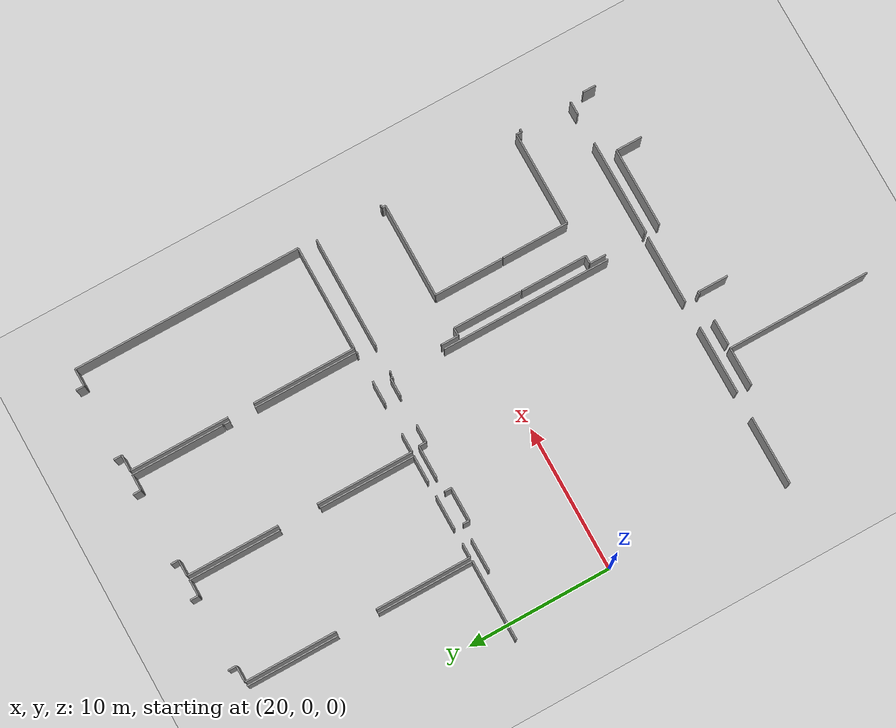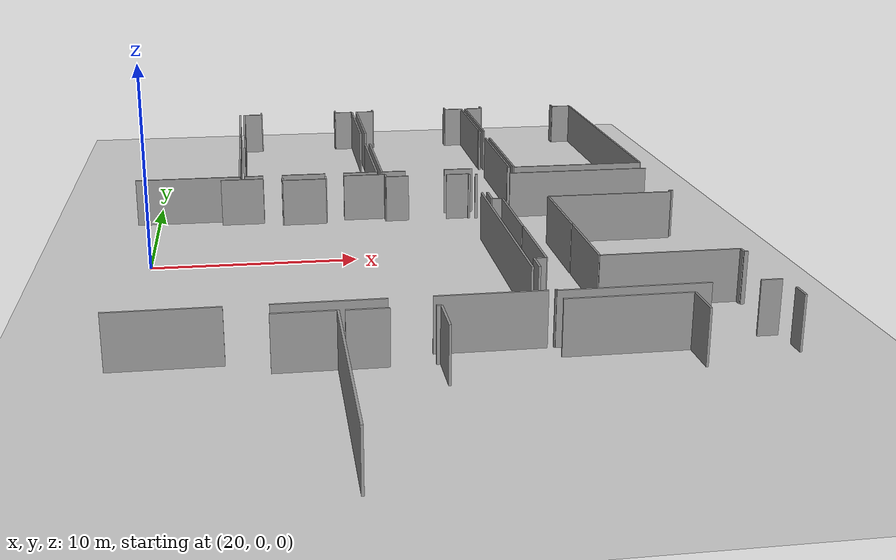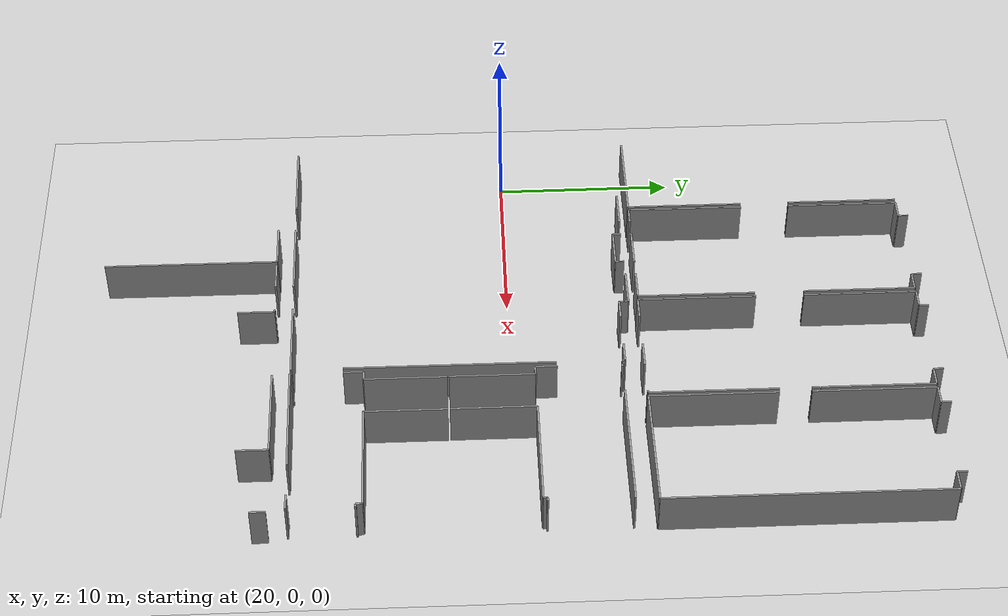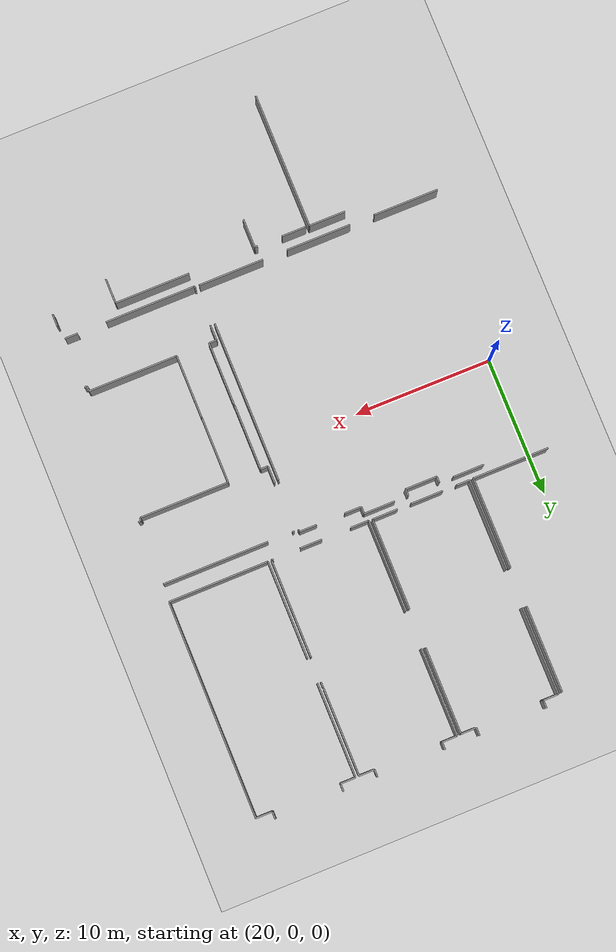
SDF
<sdf version="1.6">
 <world name="default">
  <model name="ground_plane">
   <static>1</static>
   <link name="link">
    <collision name="collision">
     <geometry><plane><normal>0 0 1</normal><size>100 100</size></plane></geometry>
     <surface><friction><ode><mu>100</mu><mu2>50</mu2></ode></friction></surface>
    </collision>
    <visual name="visual">
     <cast_shadows>0</cast_shadows>
     <geometry><plane><normal>0 0 1</normal><size>100 100</size></plane></geometry>
     <material>
      <script><uri>file://media/materials/scripts/gazebo.material</uri><name>Gazebo/Grey</name></script>
     </material>
    </visual>
   </link>
  </model>
  <model name="50045229">
   <static>1</static>
   <link name="Wall_15">
    <collision name="Wall_15_Collision">
     <geometry><box><size>0.431913084314 0.1 2.5</size></box></geometry>
     <pose>0.215956542157 0 1.25 0 0 0</pose>
    </collision>
    <visual name="Wall_15_Visual">
     <pose>0.215956542157 0 1.25 0 0 0</pose>
     <geometry><box><size>0.431913084314 0.1 2.5</size></box></geometry>
     <material>
      <script><uri>file://media/materials/scripts/gazebo.material</uri><name>Gazebo/Grey</name></script>
      <ambient>1 1 1 1</ambient>
     </material>
    </visual>
    <pose>86.2049270837 -6.99475815152 0 0 0 -1.57079632679</pose>
   </link>
   <link name="Wall_16">
    <collision name="Wall_16_Collision">
     <geometry><box><size>7.16381728414 0.1 2.5</size></box></geometry>
     <pose>3.58190864207 0 1.25 0 0 0</pose>
    </collision>
    <visual name="Wall_16_Visual">
     <pose>3.58190864207 0 1.25 0 0 0</pose>
     <geometry><box><size>7.16381728414 0.1 2.5</size></box></geometry>
     <material>
      <script><uri>file://media/materials/scripts/gazebo.material</uri><name>Gazebo/Grey</name></script>
      <ambient>1 1 1 1</ambient>
     </material>
    </visual>
    <pose>86.2049270837 -9.20737666426 0 0 0 -1.57079632679</pose>
   </link>
   <link name="Wall_17">
    <collision name="Wall_17_Collision">
     <geometry><box><size>0.134282704438 0.1 2.5</size></box></geometry>
     <pose>0.0671413522192 0 1.25 0 0 0</pose>
    </collision>
    <visual name="Wall_17_Visual">
     <pose>0.0671413522192 0 1.25 0 0 0</pose>
     <geometry><box><size>0.134282704438 0.1 2.5</size></box></geometry>
     <material>
      <script><uri>file://media/materials/scripts/gazebo.material</uri><name>Gazebo/Grey</name></script>
      <ambient>1 1 1 1</ambient>
     </material>
    </visual>
    <pose>86.2049270837 -16.3711939484 0 0 0 3.14159265359</pose>
   </link>
   <link name="Wall_18">
    <collision name="Wall_18_Collision">
     <geometry><box><size>1.5865158842 0.1 2.5</size></box></geometry>
     <pose>0.793257942099 0 1.25 0 0 0</pose>
    </collision>
    <visual name="Wall_18_Visual">
     <pose>0.793257942099 0 1.25 0 0 0</pose>
     <geometry><box><size>1.5865158842 0.1 2.5</size></box></geometry>
     <material>
      <script><uri>file://media/materials/scripts/gazebo.material</uri><name>Gazebo/Grey</name></script>
      <ambient>1 1 1 1</ambient>
     </material>
    </visual>
    <pose>84.0872456815 -16.3711939484 0 0 0 3.14159265359</pose>
   </link>
   <link name="Wall_19">
    <collision name="Wall_19_Collision">
     <geometry><box><size>1.31998121565 0.1 2.5</size></box></geometry>
     <pose>0.659990607826 0 1.25 0 0 0</pose>
    </collision>
    <visual name="Wall_19_Visual">
     <pose>0.659990607826 0 1.25 0 0 0</pose>
     <geometry><box><size>1.31998121565 0.1 2.5</size></box></geometry>
     <material>
      <script><uri>file://media/materials/scripts/gazebo.material</uri><name>Gazebo/Grey</name></script>
      <ambient>1 1 1 1</ambient>
     </material>
    </visual>
    <pose>80.3557603219 -16.3711939484 0 0 0 3.14159265359</pose>
   </link>
   <link name="Wall_20">
    <collision name="Wall_20_Collision">
     <geometry><box><size>6.68925865286 0.1 2.5</size></box></geometry>
     <pose>3.34462932643 0 1.25 0 0 0</pose>
    </collision>
    <visual name="Wall_20_Visual">
     <pose>3.34462932643 0 1.25 0 0 0</pose>
     <geometry><box><size>6.68925865286 0.1 2.5</size></box></geometry>
     <material>
      <script><uri>file://media/materials/scripts/gazebo.material</uri><name>Gazebo/Grey</name></script>
      <ambient>1 1 1 1</ambient>
     </material>
    </visual>
    <pose>79.0357791062 -16.3711939484 0 0 0 1.57079632679</pose>
   </link>
   <link name="Wall_81">
    <collision name="Wall_81_Collision">
     <geometry><box><size>6.31344477021 0.1 2.5</size></box></geometry>
     <pose>3.1567223851 0 1.25 0 0 0</pose>
    </collision>
    <visual name="Wall_81_Visual">
     <pose>3.1567223851 0 1.25 0 0 0</pose>
     <geometry><box><size>6.31344477021 0.1 2.5</size></box></geometry>
     <material>
      <script><uri>file://media/materials/scripts/gazebo.material</uri><name>Gazebo/Grey</name></script>
      <ambient>1 1 1 1</ambient>
     </material>
    </visual>
    <pose>71.3103351991 -0.602241429641 0 0 0 -1.57079632679</pose>
   </link>
   <link name="Wall_82">
    <collision name="Wall_82_Collision">
     <geometry><box><size>6.33984439452 0.1 2.5</size></box></geometry>
     <pose>3.16992219726 0 1.25 0 0 0</pose>
    </collision>
    <visual name="Wall_82_Visual">
     <pose>3.16992219726 0 1.25 0 0 0</pose>
     <geometry><box><size>6.33984439452 0.1 2.5</size></box></geometry>
     <material>
      <script><uri>file://media/materials/scripts/gazebo.material</uri><name>Gazebo/Grey</name></script>
      <ambient>1 1 1 1</ambient>
     </material>
    </visual>
    <pose>71.591592735 -6.93599360317 0 0 0 1.57079632679</pose>
   </link>
   <link name="Wall_83">
    <collision name="Wall_83_Collision">
     <geometry><box><size>1.11513028468 0.1 2.5</size></box></geometry>
     <pose>0.557565142342 0 1.25 0 0 0</pose>
    </collision>
    <visual name="Wall_83_Visual">
     <pose>0.557565142342 0 1.25 0 0 0</pose>
     <geometry><box><size>1.11513028468 0.1 2.5</size></box></geometry>
     <material>
      <script><uri>file://media/materials/scripts/gazebo.material</uri><name>Gazebo/Grey</name></script>
      <ambient>1 1 1 1</ambient>
     </material>
    </visual>
    <pose>71.591592735 -0.596149208646 0 0 0 0.0</pose>
   </link>
   <link name="Wall_84">
    <collision name="Wall_84_Collision">
     <geometry><box><size>0.570638033228 0.1 2.5</size></box></geometry>
     <pose>0.285319016614 0 1.25 0 0 0</pose>
    </collision>
    <visual name="Wall_84_Visual">
     <pose>0.285319016614 0 1.25 0 0 0</pose>
     <geometry><box><size>0.570638033228 0.1 2.5</size></box></geometry>
     <material>
      <script><uri>file://media/materials/scripts/gazebo.material</uri><name>Gazebo/Grey</name></script>
      <ambient>1 1 1 1</ambient>
     </material>
    </visual>
    <pose>72.7067230197 -0.596149208646 0 0 0 1.57079632679</pose>
   </link>
   <link name="Wall_85">
    <collision name="Wall_85_Collision">
     <geometry><box><size>0.57609564787 0.1 2.5</size></box></geometry>
     <pose>0.288047823935 0 1.25 0 0 0</pose>
    </collision>
    <visual name="Wall_85_Visual">
     <pose>0.288047823935 0 1.25 0 0 0</pose>
     <geometry><box><size>0.57609564787 0.1 2.5</size></box></geometry>
     <material>
      <script><uri>file://media/materials/scripts/gazebo.material</uri><name>Gazebo/Grey</name></script>
      <ambient>1 1 1 1</ambient>
     </material>
    </visual>
    <pose>77.6178146696 -0.0255111754179 0 0 0 -1.57079632679</pose>
   </link>
   <link name="Wall_86">
    <collision name="Wall_86_Collision">
     <geometry><box><size>1.12477630126 0.1 2.5</size></box></geometry>
     <pose>0.56238815063 0 1.25 0 0 0</pose>
    </collision>
    <visual name="Wall_86_Visual">
     <pose>0.56238815063 0 1.25 0 0 0</pose>
     <geometry><box><size>1.12477630126 0.1 2.5</size></box></geometry>
     <material>
      <script><uri>file://media/materials/scripts/gazebo.material</uri><name>Gazebo/Grey</name></script>
      <ambient>1 1 1 1</ambient>
     </material>
    </visual>
    <pose>77.6178146696 -0.601606823288 0 0 0 0.0</pose>
   </link>
   <link name="Wall_87">
    <collision name="Wall_87_Collision">
     <geometry><box><size>6.31814085723 0.1 2.5</size></box></geometry>
     <pose>3.15907042861 0 1.25 0 0 0</pose>
    </collision>
    <visual name="Wall_87_Visual">
     <pose>3.15907042861 0 1.25 0 0 0</pose>
     <geometry><box><size>6.31814085723 0.1 2.5</size></box></geometry>
     <material>
      <script><uri>file://media/materials/scripts/gazebo.material</uri><name>Gazebo/Grey</name></script>
      <ambient>1 1 1 1</ambient>
     </material>
    </visual>
    <pose>78.7425909708 -0.601606823288 0 0 0 -1.57079632679</pose>
   </link>
   <link name="Wall_88">
    <collision name="Wall_88_Collision">
     <geometry><box><size>6.37068626331 0.1 2.5</size></box></geometry>
     <pose>3.18534313166 0 1.25 0 0 0</pose>
    </collision>
    <visual name="Wall_88_Visual">
     <pose>3.18534313166 0 1.25 0 0 0</pose>
     <geometry><box><size>6.37068626331 0.1 2.5</size></box></geometry>
     <material>
      <script><uri>file://media/materials/scripts/gazebo.material</uri><name>Gazebo/Grey</name></script>
      <ambient>1 1 1 1</ambient>
     </material>
    </visual>
    <pose>79.0359060275 -6.94678191118 0 0 0 1.57079632679</pose>
   </link>
   <link name="Wall_89">
    <collision name="Wall_89_Collision">
     <geometry><box><size>1.10840345734 0.1 2.5</size></box></geometry>
     <pose>0.554201728668 0 1.25 0 0 0</pose>
    </collision>
    <visual name="Wall_89_Visual">
     <pose>0.554201728668 0 1.25 0 0 0</pose>
     <geometry><box><size>1.10840345734 0.1 2.5</size></box></geometry>
     <material>
      <script><uri>file://media/materials/scripts/gazebo.material</uri><name>Gazebo/Grey</name></script>
      <ambient>1 1 1 1</ambient>
     </material>
    </visual>
    <pose>79.0359060275 -0.57609564787 0 0 0 0.0</pose>
   </link>
   <link name="Wall_90">
    <collision name="Wall_90_Collision">
     <geometry><box><size>0.542715353666 0.1 2.5</size></box></geometry>
     <pose>0.271357676833 0 1.25 0 0 0</pose>
    </collision>
    <visual name="Wall_90_Visual">
     <pose>0.271357676833 0 1.25 0 0 0</pose>
     <geometry><box><size>0.542715353666 0.1 2.5</size></box></geometry>
     <material>
      <script><uri>file://media/materials/scripts/gazebo.material</uri><name>Gazebo/Grey</name></script>
      <ambient>1 1 1 1</ambient>
     </material>
    </visual>
    <pose>80.1443094848 -0.57609564787 0 0 0 1.57079632679</pose>
   </link>
   <link name="Wall_91">
    <collision name="Wall_91_Collision">
     <geometry><box><size>0.555280559469 0.1 2.5</size></box></geometry>
     <pose>0.277640279734 0 1.25 0 0 0</pose>
    </collision>
    <visual name="Wall_91_Visual">
     <pose>0.277640279734 0 1.25 0 0 0</pose>
     <geometry><box><size>0.555280559469 0.1 2.5</size></box></geometry>
     <material>
      <script><uri>file://media/materials/scripts/gazebo.material</uri><name>Gazebo/Grey</name></script>
      <ambient>1 1 1 1</ambient>
     </material>
    </visual>
    <pose>85.0726624275 -0.0333802942035 0 0 0 -1.57079632679</pose>
   </link>
   <link name="Wall_92">
    <collision name="Wall_92_Collision">
     <geometry><box><size>1.12325324601 0.1 2.5</size></box></geometry>
     <pose>0.561626623006 0 1.25 0 0 0</pose>
    </collision>
    <visual name="Wall_92_Visual">
     <pose>0.561626623006 0 1.25 0 0 0</pose>
     <geometry><box><size>1.12325324601 0.1 2.5</size></box></geometry>
     <material>
      <script><uri>file://media/materials/scripts/gazebo.material</uri><name>Gazebo/Grey</name></script>
      <ambient>1 1 1 1</ambient>
     </material>
    </visual>
    <pose>85.0726624275 -0.588660853672 0 0 0 0.0</pose>
   </link>
   <link name="Wall_93">
    <collision name="Wall_93_Collision">
     <geometry><box><size>6.34149437104 0.1 2.5</size></box></geometry>
     <pose>3.17074718552 0 1.25 0 0 0</pose>
    </collision>
    <visual name="Wall_93_Visual">
     <pose>3.17074718552 0 1.25 0 0 0</pose>
     <geometry><box><size>6.34149437104 0.1 2.5</size></box></geometry>
     <material>
      <script><uri>file://media/materials/scripts/gazebo.material</uri><name>Gazebo/Grey</name></script>
      <ambient>1 1 1 1</ambient>
     </material>
    </visual>
    <pose>86.1959156735 -0.588660853672 0 0 0 -1.57079632679</pose>
   </link>
   <link name="Wall_94">
    <collision name="Wall_94_Collision">
     <geometry><box><size>7.13297541535 0.1 2.5</size></box></geometry>
     <pose>3.56648770767 0 1.25 0 0 0</pose>
    </collision>
    <visual name="Wall_94_Visual">
     <pose>3.56648770767 0 1.25 0 0 0</pose>
     <geometry><box><size>7.13297541535 0.1 2.5</size></box></geometry>
     <material>
      <script><uri>file://media/materials/scripts/gazebo.material</uri><name>Gazebo/Grey</name></script>
      <ambient>1 1 1 1</ambient>
     </material>
    </visual>
    <pose>86.461942657 -16.3624363807 0 0 0 1.57079632679</pose>
   </link>
   <link name="Wall_95">
    <collision name="Wall_95_Collision">
     <geometry><box><size>6.86491769156 0.1 2.5</size></box></geometry>
     <pose>3.43245884578 0 1.25 0 0 0</pose>
    </collision>
    <visual name="Wall_95_Visual">
     <pose>3.43245884578 0 1.25 0 0 0</pose>
     <geometry><box><size>6.86491769156 0.1 2.5</size></box></geometry>
     <material>
      <script><uri>file://media/materials/scripts/gazebo.material</uri><name>Gazebo/Grey</name></script>
      <ambient>1 1 1 1</ambient>
     </material>
    </visual>
    <pose>86.461942657 -7.44279023722 0 0 0 1.57079632679</pose>
   </link>
   <link name="Wall_96">
    <collision name="Wall_96_Collision">
     <geometry><box><size>1.10294584269 0.1 2.5</size></box></geometry>
     <pose>0.551472921347 0 1.25 0 0 0</pose>
    </collision>
    <visual name="Wall_96_Visual">
     <pose>0.551472921347 0 1.25 0 0 0</pose>
     <geometry><box><size>1.10294584269 0.1 2.5</size></box></geometry>
     <material>
      <script><uri>file://media/materials/scripts/gazebo.material</uri><name>Gazebo/Grey</name></script>
      <ambient>1 1 1 1</ambient>
     </material>
    </visual>
    <pose>86.461942657 -0.57787254566 0 0 0 0.0</pose>
   </link>
   <link name="Wall_97">
    <collision name="Wall_97_Collision">
     <geometry><box><size>0.560103567757 0.1 2.5</size></box></geometry>
     <pose>0.280051783878 0 1.25 0 0 0</pose>
    </collision>
    <visual name="Wall_97_Visual">
     <pose>0.280051783878 0 1.25 0 0 0</pose>
     <geometry><box><size>0.560103567757 0.1 2.5</size></box></geometry>
     <material>
      <script><uri>file://media/materials/scripts/gazebo.material</uri><name>Gazebo/Grey</name></script>
      <ambient>1 1 1 1</ambient>
     </material>
    </visual>
    <pose>87.5648884997 -0.57787254566 0 0 0 1.57079632679</pose>
   </link>
   <link name="Wall_98">
    <collision name="Wall_98_Collision">
     <geometry><box><size>0.566195788752 0.1 2.5</size></box></geometry>
     <pose>0.283097894376 0 1.25 0 0 0</pose>
    </collision>
    <visual name="Wall_98_Visual">
     <pose>0.283097894376 0 1.25 0 0 0</pose>
     <geometry><box><size>0.566195788752 0.1 2.5</size></box></geometry>
     <material>
      <script><uri>file://media/materials/scripts/gazebo.material</uri><name>Gazebo/Grey</name></script>
      <ambient>1 1 1 1</ambient>
     </material>
    </visual>
    <pose>92.5294140045 -0.017768977903 0 0 0 -1.57079632679</pose>
   </link>
   <link name="Wall_99">
    <collision name="Wall_99_Collision">
     <geometry><box><size>1.19965985099 0.1 2.5</size></box></geometry>
     <pose>0.599829925497 0 1.25 0 0 0</pose>
    </collision>
    <visual name="Wall_99_Visual">
     <pose>0.599829925497 0 1.25 0 0 0</pose>
     <geometry><box><size>1.19965985099 0.1 2.5</size></box></geometry>
     <material>
      <script><uri>file://media/materials/scripts/gazebo.material</uri><name>Gazebo/Grey</name></script>
      <ambient>1 1 1 1</ambient>
     </material>
    </visual>
    <pose>92.5294140045 -0.583964766655 0 0 0 0.0</pose>
   </link>
   <link name="Wall_100">
    <collision name="Wall_100_Collision">
     <geometry><box><size>15.7641295105 0.1 2.5</size></box></geometry>
     <pose>7.88206475523 0 1.25 0 0 0</pose>
    </collision>
    <visual name="Wall_100_Visual">
     <pose>7.88206475523 0 1.25 0 0 0</pose>
     <geometry><box><size>15.7641295105 0.1 2.5</size></box></geometry>
     <material>
      <script><uri>file://media/materials/scripts/gazebo.material</uri><name>Gazebo/Grey</name></script>
      <ambient>1 1 1 1</ambient>
     </material>
    </visual>
    <pose>93.7290738555 -0.583964766655 0 0 0 -1.57079632679</pose>
   </link>
   <link name="Wall_101">
    <collision name="Wall_101_Collision">
     <geometry><box><size>7.26714535099 0.1 2.5</size></box></geometry>
     <pose>3.63357267549 0 1.25 0 0 0</pose>
    </collision>
    <visual name="Wall_101_Visual">
     <pose>3.63357267549 0 1.25 0 0 0</pose>
     <geometry><box><size>7.26714535099 0.1 2.5</size></box></geometry>
     <material>
      <script><uri>file://media/materials/scripts/gazebo.material</uri><name>Gazebo/Grey</name></script>
      <ambient>1 1 1 1</ambient>
     </material>
    </visual>
    <pose>93.7290738555 -16.3480942771 0 0 0 -3.13961909833</pose>
   </link>
   <link name="Wall_102">
    <collision name="Wall_102_Collision">
     <geometry><box><size>6.60904440975 0.1 2.5</size></box></geometry>
     <pose>3.30452220488 0 1.25 0 0 0</pose>
    </collision>
    <visual name="Wall_102_Visual">
     <pose>3.30452220488 0 1.25 0 0 0</pose>
     <geometry><box><size>6.60904440975 0.1 2.5</size></box></geometry>
     <material>
      <script><uri>file://media/materials/scripts/gazebo.material</uri><name>Gazebo/Grey</name></script>
      <ambient>1 1 1 1</ambient>
     </material>
    </visual>
    <pose>71.5791544505 -16.3390828669 0 0 0 1.57079632679</pose>
   </link>
   <link name="Wall_103">
    <collision name="Wall_103_Collision">
     <geometry><box><size>6.61107515008 0.1 2.5</size></box></geometry>
     <pose>3.30553757504 0 1.25 0 0 0</pose>
    </collision>
    <visual name="Wall_103_Visual">
     <pose>3.30553757504 0 1.25 0 0 0</pose>
     <geometry><box><size>6.61107515008 0.1 2.5</size></box></geometry>
     <material>
      <script><uri>file://media/materials/scripts/gazebo.material</uri><name>Gazebo/Grey</name></script>
      <ambient>1 1 1 1</ambient>
     </material>
    </visual>
    <pose>78.7601061062 -9.73003845715 0 0 0 -1.57079632679</pose>
   </link>
   <link name="Wall_104">
    <collision name="Wall_104_Collision">
     <geometry><box><size>1.82753937732 0.1 2.5</size></box></geometry>
     <pose>0.913769688662 0 1.25 0 0 0</pose>
    </collision>
    <visual name="Wall_104_Visual">
     <pose>0.913769688662 0 1.25 0 0 0</pose>
     <geometry><box><size>1.82753937732 0.1 2.5</size></box></geometry>
     <material>
      <script><uri>file://media/materials/scripts/gazebo.material</uri><name>Gazebo/Grey</name></script>
      <ambient>1 1 1 1</ambient>
     </material>
    </visual>
    <pose>78.7601061062 -16.3411136072 0 0 0 3.14159265359</pose>
   </link>
   <link name="Wall_105">
    <collision name="Wall_105_Collision">
     <geometry><box><size>2.34512431938 0.1 2.5</size></box></geometry>
     <pose>1.17256215969 0 1.25 0 0 0</pose>
    </collision>
    <visual name="Wall_105_Visual">
     <pose>1.17256215969 0 1.25 0 0 0</pose>
     <geometry><box><size>2.34512431938 0.1 2.5</size></box></geometry>
     <material>
      <script><uri>file://media/materials/scripts/gazebo.material</uri><name>Gazebo/Grey</name></script>
      <ambient>1 1 1 1</ambient>
     </material>
    </visual>
    <pose>75.9227810989 -16.3411136072 0 0 0 3.14159265359</pose>
   </link>
   <link name="Wall_106">
    <collision name="Wall_106_Collision">
     <geometry><box><size>0.988845705517 0.1 2.5</size></box></geometry>
     <pose>0.494422852758 0 1.25 0 0 0</pose>
    </collision>
    <visual name="Wall_106_Visual">
     <pose>0.494422852758 0 1.25 0 0 0</pose>
     <geometry><box><size>0.988845705517 0.1 2.5</size></box></geometry>
     <material>
      <script><uri>file://media/materials/scripts/gazebo.material</uri><name>Gazebo/Grey</name></script>
      <ambient>1 1 1 1</ambient>
     </material>
    </visual>
    <pose>72.5679980708 -16.3411136072 0 0 0 3.13953900483</pose>
   </link>
   <link name="Wall_108">
    <collision name="Wall_108_Collision">
     <geometry><box><size>6.62414804097 0.1 2.5</size></box></geometry>
     <pose>3.31207402049 0 1.25 0 0 0</pose>
    </collision>
    <visual name="Wall_108_Visual">
     <pose>3.31207402049 0 1.25 0 0 0</pose>
     <geometry><box><size>6.62414804097 0.1 2.5</size></box></geometry>
     <material>
      <script><uri>file://media/materials/scripts/gazebo.material</uri><name>Gazebo/Grey</name></script>
      <ambient>1 1 1 1</ambient>
     </material>
    </visual>
    <pose>71.3161735775 -9.73003845715 0 0 0 -1.57079632679</pose>
   </link>
   <link name="Wall_109">
    <collision name="Wall_109_Collision">
     <geometry><box><size>5.53097513612 0.1 2.5</size></box></geometry>
     <pose>2.76548756806 0 1.25 0 0 0</pose>
    </collision>
    <visual name="Wall_109_Visual">
     <pose>2.76548756806 0 1.25 0 0 0</pose>
     <geometry><box><size>5.53097513612 0.1 2.5</size></box></geometry>
     <material>
      <script><uri>file://media/materials/scripts/gazebo.material</uri><name>Gazebo/Grey</name></script>
      <ambient>1 1 1 1</ambient>
     </material>
    </visual>
    <pose>71.3161735775 -16.3541864981 0 0 0 3.14159265359</pose>
   </link>
   <link name="Wall_305">
    <collision name="Wall_305_Collision">
     <geometry><box><size>2.65988907081 0.1 2.5</size></box></geometry>
     <pose>1.3299445354 0 1.25 0 0 0</pose>
    </collision>
    <visual name="Wall_305_Visual">
     <pose>1.3299445354 0 1.25 0 0 0</pose>
     <geometry><box><size>2.65988907081 0.1 2.5</size></box></geometry>
     <material>
      <script><uri>file://media/materials/scripts/gazebo.material</uri><name>Gazebo/Grey</name></script>
      <ambient>1 1 1 1</ambient>
     </material>
    </visual>
    <pose>72.4518651081 -36.799045552 0 0 0 0.0</pose>
   </link>
   <link name="Wall_306">
    <collision name="Wall_306_Collision">
     <geometry><box><size>9.84122149031 0.1 2.5</size></box></geometry>
     <pose>4.92061074515 0 1.25 0 0 0</pose>
    </collision>
    <visual name="Wall_306_Visual">
     <pose>4.92061074515 0 1.25 0 0 0</pose>
     <geometry><box><size>9.84122149031 0.1 2.5</size></box></geometry>
     <material>
      <script><uri>file://media/materials/scripts/gazebo.material</uri><name>Gazebo/Grey</name></script>
      <ambient>1 1 1 1</ambient>
     </material>
    </visual>
    <pose>75.1117541789 -36.799045552 0 0 0 -1.57079632679</pose>
   </link>
   <link name="Wall_320">
    <collision name="Wall_320_Collision">
     <geometry><box><size>1.75532117428 0.1 2.5</size></box></geometry>
     <pose>0.877660587138 0 1.25 0 0 0</pose>
    </collision>
    <visual name="Wall_320_Visual">
     <pose>0.877660587138 0 1.25 0 0 0</pose>
     <geometry><box><size>1.75532117428 0.1 2.5</size></box></geometry>
     <material>
      <script><uri>file://media/materials/scripts/gazebo.material</uri><name>Gazebo/Grey</name></script>
      <ambient>1 1 1 1</ambient>
     </material>
    </visual>
    <pose>75.380446509 -36.8225259871 0 0 0 0.0</pose>
   </link>
   <link name="Wall_321">
    <collision name="Wall_321_Collision">
     <geometry><box><size>0.204343245885 0.1 2.5</size></box></geometry>
     <pose>0.102171622942 0 1.25 0 0 0</pose>
    </collision>
    <visual name="Wall_321_Visual">
     <pose>0.102171622942 0 1.25 0 0 0</pose>
     <geometry><box><size>0.204343245885 0.1 2.5</size></box></geometry>
     <material>
      <script><uri>file://media/materials/scripts/gazebo.material</uri><name>Gazebo/Grey</name></script>
      <ambient>1 1 1 1</ambient>
     </material>
    </visual>
    <pose>78.9596263438 -36.8225259871 0 0 0 0.0</pose>
   </link>
   <link name="Wall_322">
    <collision name="Wall_322_Collision">
     <geometry><box><size>2.08442802929 0.1 2.5</size></box></geometry>
     <pose>1.04221401465 0 1.25 0 0 0</pose>
    </collision>
    <visual name="Wall_322_Visual">
     <pose>1.04221401465 0 1.25 0 0 0</pose>
     <geometry><box><size>2.08442802929 0.1 2.5</size></box></geometry>
     <material>
      <script><uri>file://media/materials/scripts/gazebo.material</uri><name>Gazebo/Grey</name></script>
      <ambient>1 1 1 1</ambient>
     </material>
    </visual>
    <pose>79.1639695897 -36.8225259871 0 0 0 -1.57079632679</pose>
   </link>
   <link name="Wall_336">
    <collision name="Wall_336_Collision">
     <geometry><box><size>0.895683407582 0.1 2.5</size></box></geometry>
     <pose>0.447841703791 0 1.25 0 0 0</pose>
    </collision>
    <visual name="Wall_336_Visual">
     <pose>0.447841703791 0 1.25 0 0 0</pose>
     <geometry><box><size>0.895683407582 0.1 2.5</size></box></geometry>
     <material>
      <script><uri>file://media/materials/scripts/gazebo.material</uri><name>Gazebo/Grey</name></script>
      <ambient>1 1 1 1</ambient>
     </material>
    </visual>
    <pose>93.7967228928 -36.8320450824 0 0 0 -1.57079632679</pose>
   </link>
   <link name="Wall_347">
    <collision name="Wall_347_Collision">
     <geometry><box><size>5.44111487644 0.1 2.5</size></box></geometry>
     <pose>2.72055743822 0 1.25 0 0 0</pose>
    </collision>
    <visual name="Wall_347_Visual">
     <pose>2.72055743822 0 1.25 0 0 0</pose>
     <geometry><box><size>5.44111487644 0.1 2.5</size></box></geometry>
     <material>
      <script><uri>file://media/materials/scripts/gazebo.material</uri><name>Gazebo/Grey</name></script>
      <ambient>1 1 1 1</ambient>
     </material>
    </visual>
    <pose>84.0594499232 -36.8203683255 0 0 0 0.0</pose>
   </link>
   <link name="Wall_348">
    <collision name="Wall_348_Collision">
     <geometry><box><size>1.78590920052 0.1 2.5</size></box></geometry>
     <pose>0.892954600261 0 1.25 0 0 0</pose>
    </collision>
    <visual name="Wall_348_Visual">
     <pose>0.892954600261 0 1.25 0 0 0</pose>
     <geometry><box><size>1.78590920052 0.1 2.5</size></box></geometry>
     <material>
      <script><uri>file://media/materials/scripts/gazebo.material</uri><name>Gazebo/Grey</name></script>
      <ambient>1 1 1 1</ambient>
     </material>
    </visual>
    <pose>89.5005647997 -36.8203683255 0 0 0 -1.57079632679</pose>
   </link>
   <link name="Wall_368">
    <collision name="Wall_368_Collision">
     <geometry><box><size>0.126921270736 0.1 2.5</size></box></geometry>
     <pose>0.0634606353679 0 1.25 0 0 0</pose>
    </collision>
    <visual name="Wall_368_Visual">
     <pose>0.0634606353679 0 1.25 0 0 0</pose>
     <geometry><box><size>0.126921270736 0.1 2.5</size></box></geometry>
     <material>
      <script><uri>file://media/materials/scripts/gazebo.material</uri><name>Gazebo/Grey</name></script>
      <ambient>1 1 1 1</ambient>
     </material>
    </visual>
    <pose>84.0237850461 -35.8492936831 0 0 0 1.57079632679</pose>
   </link>
   <link name="Wall_369">
    <collision name="Wall_369_Collision">
     <geometry><box><size>1.11728794629 0.1 2.5</size></box></geometry>
     <pose>0.558643973143 0 1.25 0 0 0</pose>
    </collision>
    <visual name="Wall_369_Visual">
     <pose>0.558643973143 0 1.25 0 0 0</pose>
     <geometry><box><size>1.11728794629 0.1 2.5</size></box></geometry>
     <material>
      <script><uri>file://media/materials/scripts/gazebo.material</uri><name>Gazebo/Grey</name></script>
      <ambient>1 1 1 1</ambient>
     </material>
    </visual>
    <pose>84.0237850461 -32.9301044562 0 0 0 1.57079632679</pose>
   </link>
   <link name="Wall_370">
    <collision name="Wall_370_Collision">
     <geometry><box><size>0.549696023557 0.1 2.5</size></box></geometry>
     <pose>0.274848011778 0 1.25 0 0 0</pose>
    </collision>
    <visual name="Wall_370_Visual">
     <pose>0.274848011778 0 1.25 0 0 0</pose>
     <geometry><box><size>0.549696023557 0.1 2.5</size></box></geometry>
     <material>
      <script><uri>file://media/materials/scripts/gazebo.material</uri><name>Gazebo/Grey</name></script>
      <ambient>1 1 1 1</ambient>
     </material>
    </visual>
    <pose>84.0237850461 -31.8128165099 0 0 0 0.0</pose>
   </link>
   <link name="Wall_371">
    <collision name="Wall_371_Collision">
     <geometry><box><size>4.57094264428 0.1 2.5</size></box></geometry>
     <pose>2.28547132214 0 1.25 0 0 0</pose>
    </collision>
    <visual name="Wall_371_Visual">
     <pose>2.28547132214 0 1.25 0 0 0</pose>
     <geometry><box><size>4.57094264428 0.1 2.5</size></box></geometry>
     <material>
      <script><uri>file://media/materials/scripts/gazebo.material</uri><name>Gazebo/Grey</name></script>
      <ambient>1 1 1 1</ambient>
     </material>
    </visual>
    <pose>84.5734810697 -31.8128165099 0 0 0 1.57079632679</pose>
   </link>
   <link name="Wall_372">
    <collision name="Wall_372_Collision">
     <geometry><box><size>4.58401553516 0.1 2.5</size></box></geometry>
     <pose>2.29200776758 0 1.25 0 0 0</pose>
    </collision>
    <visual name="Wall_372_Visual">
     <pose>2.29200776758 0 1.25 0 0 0</pose>
     <geometry><box><size>4.58401553516 0.1 2.5</size></box></geometry>
     <material>
      <script><uri>file://media/materials/scripts/gazebo.material</uri><name>Gazebo/Grey</name></script>
      <ambient>1 1 1 1</ambient>
     </material>
    </visual>
    <pose>86.9631547551 -27.2418738656 0 0 0 -1.57079632679</pose>
   </link>
   <link name="Wall_373">
    <collision name="Wall_373_Collision">
     <geometry><box><size>6.47818857962 0.1 2.5</size></box></geometry>
     <pose>3.23909428981 0 1.25 0 0 0</pose>
    </collision>
    <visual name="Wall_373_Visual">
     <pose>3.23909428981 0 1.25 0 0 0</pose>
     <geometry><box><size>6.47818857962 0.1 2.5</size></box></geometry>
     <material>
      <script><uri>file://media/materials/scripts/gazebo.material</uri><name>Gazebo/Grey</name></script>
      <ambient>1 1 1 1</ambient>
     </material>
    </visual>
    <pose>86.9631547551 -31.8258894008 0 0 0 0.0</pose>
   </link>
   <link name="Wall_374">
    <collision name="Wall_374_Collision">
     <geometry><box><size>0.368071685134 0.1 2.5</size></box></geometry>
     <pose>0.184035842567 0 1.25 0 0 0</pose>
    </collision>
    <visual name="Wall_374_Visual">
     <pose>0.184035842567 0 1.25 0 0 0</pose>
     <geometry><box><size>0.368071685134 0.1 2.5</size></box></geometry>
     <material>
      <script><uri>file://media/materials/scripts/gazebo.material</uri><name>Gazebo/Grey</name></script>
      <ambient>1 1 1 1</ambient>
     </material>
    </visual>
    <pose>93.4413433347 -31.8258894008 0 0 0 -1.57079632679</pose>
   </link>
   <link name="Wall_375">
    <collision name="Wall_375_Collision">
     <geometry><box><size>0.190381906104 0.1 2.5</size></box></geometry>
     <pose>0.0951909530518 0 1.25 0 0 0</pose>
    </collision>
    <visual name="Wall_375_Visual">
     <pose>0.0951909530518 0 1.25 0 0 0</pose>
     <geometry><box><size>0.190381906104 0.1 2.5</size></box></geometry>
     <material>
      <script><uri>file://media/materials/scripts/gazebo.material</uri><name>Gazebo/Grey</name></script>
      <ambient>1 1 1 1</ambient>
     </material>
    </visual>
    <pose>93.4413433347 -32.1939610859 0 0 0 0.0</pose>
   </link>
   <link name="Wall_376">
    <collision name="Wall_376_Collision">
     <geometry><box><size>0.929571386869 0.1 2.5</size></box></geometry>
     <pose>0.464785693434 0 1.25 0 0 0</pose>
    </collision>
    <visual name="Wall_376_Visual">
     <pose>0.464785693434 0 1.25 0 0 0</pose>
     <geometry><box><size>0.929571386869 0.1 2.5</size></box></geometry>
     <material>
      <script><uri>file://media/materials/scripts/gazebo.material</uri><name>Gazebo/Grey</name></script>
      <ambient>1 1 1 1</ambient>
     </material>
    </visual>
    <pose>93.6317252408 -35.8340631306 0 0 0 3.14159265359</pose>
   </link>
   <link name="Wall_377">
    <collision name="Wall_377_Collision">
     <geometry><box><size>6.57238180984 0.1 2.5</size></box></geometry>
     <pose>3.28619090492 0 1.25 0 0 0</pose>
    </collision>
    <visual name="Wall_377_Visual">
     <pose>3.28619090492 0 1.25 0 0 0</pose>
     <geometry><box><size>6.57238180984 0.1 2.5</size></box></geometry>
     <material>
      <script><uri>file://media/materials/scripts/gazebo.material</uri><name>Gazebo/Grey</name></script>
      <ambient>1 1 1 1</ambient>
     </material>
    </visual>
    <pose>90.5961492086 -35.8340631306 0 0 0 -3.1392752949</pose>
   </link>
   <link name="Wall_378">
    <collision name="Wall_378_Collision">
     <geometry><box><size>0.233535138154 0.1 2.5</size></box></geometry>
     <pose>0.116767569077 0 1.25 0 0 0</pose>
    </collision>
    <visual name="Wall_378_Visual">
     <pose>0.116767569077 0 1.25 0 0 0</pose>
     <geometry><box><size>0.233535138154 0.1 2.5</size></box></geometry>
     <material>
      <script><uri>file://media/materials/scripts/gazebo.material</uri><name>Gazebo/Grey</name></script>
      <ambient>1 1 1 1</ambient>
     </material>
    </visual>
    <pose>93.4388049093 -22.4197540266 0 0 0 1.57079632679</pose>
   </link>
   <link name="Wall_379">
    <collision name="Wall_379_Collision">
     <geometry><box><size>0.204343245885 0.1 2.5</size></box></geometry>
     <pose>0.102171622942 0 1.25 0 0 0</pose>
    </collision>
    <visual name="Wall_379_Visual">
     <pose>0.102171622942 0 1.25 0 0 0</pose>
     <geometry><box><size>0.204343245885 0.1 2.5</size></box></geometry>
     <material>
      <script><uri>file://media/materials/scripts/gazebo.material</uri><name>Gazebo/Grey</name></script>
      <ambient>1 1 1 1</ambient>
     </material>
    </visual>
    <pose>93.4388049093 -22.1862188884 0 0 0 0.0</pose>
   </link>
   <link name="Wall_380">
    <collision name="Wall_380_Collision">
     <geometry><box><size>7.68102146239 0.1 2.5</size></box></geometry>
     <pose>3.84051073119 0 1.25 0 0 0</pose>
    </collision>
    <visual name="Wall_380_Visual">
     <pose>3.84051073119 0 1.25 0 0 0</pose>
     <geometry><box><size>7.68102146239 0.1 2.5</size></box></geometry>
     <material>
      <script><uri>file://media/materials/scripts/gazebo.material</uri><name>Gazebo/Grey</name></script>
      <ambient>1 1 1 1</ambient>
     </material>
    </visual>
    <pose>93.6431481552 -17.6091840232 0 0 0 3.14159265359</pose>
   </link>
   <link name="Wall_381">
    <collision name="Wall_381_Collision">
     <geometry><box><size>0.143421035931 0.1 2.5</size></box></geometry>
     <pose>0.0717105179657 0 1.25 0 0 0</pose>
    </collision>
    <visual name="Wall_381_Visual">
     <pose>0.0717105179657 0 1.25 0 0 0</pose>
     <geometry><box><size>0.143421035931 0.1 2.5</size></box></geometry>
     <material>
      <script><uri>file://media/materials/scripts/gazebo.material</uri><name>Gazebo/Grey</name></script>
      <ambient>1 1 1 1</ambient>
     </material>
    </visual>
    <pose>84.1617484674 -17.6091840232 0 0 0 3.14159265359</pose>
   </link>
   <link name="Wall_382">
    <collision name="Wall_382_Collision">
     <geometry><box><size>1.22504410514 0.1 2.5</size></box></geometry>
     <pose>0.612522052571 0 1.25 0 0 0</pose>
    </collision>
    <visual name="Wall_382_Visual">
     <pose>0.612522052571 0 1.25 0 0 0</pose>
     <geometry><box><size>1.22504410514 0.1 2.5</size></box></geometry>
     <material>
      <script><uri>file://media/materials/scripts/gazebo.material</uri><name>Gazebo/Grey</name></script>
      <ambient>1 1 1 1</ambient>
     </material>
    </visual>
    <pose>84.0183274315 -21.1821447156 0 0 0 -1.57079632679</pose>
   </link>
   <link name="Wall_383">
    <collision name="Wall_383_Collision">
     <geometry><box><size>0.541826904771 0.1 2.5</size></box></geometry>
     <pose>0.270913452385 0 1.25 0 0 0</pose>
    </collision>
    <visual name="Wall_383_Visual">
     <pose>0.270913452385 0 1.25 0 0 0</pose>
     <geometry><box><size>0.541826904771 0.1 2.5</size></box></geometry>
     <material>
      <script><uri>file://media/materials/scripts/gazebo.material</uri><name>Gazebo/Grey</name></script>
      <ambient>1 1 1 1</ambient>
     </material>
    </visual>
    <pose>84.0183274315 -22.4071888208 0 0 0 0.0</pose>
   </link>
   <link name="Wall_384">
    <collision name="Wall_384_Collision">
     <geometry><box><size>4.73403647717 0.1 2.5</size></box></geometry>
     <pose>2.36701823859 0 1.25 0 0 0</pose>
    </collision>
    <visual name="Wall_384_Visual">
     <pose>2.36701823859 0 1.25 0 0 0</pose>
     <geometry><box><size>4.73403647717 0.1 2.5</size></box></geometry>
     <material>
      <script><uri>file://media/materials/scripts/gazebo.material</uri><name>Gazebo/Grey</name></script>
      <ambient>1 1 1 1</ambient>
     </material>
    </visual>
    <pose>84.5601543363 -22.4071888208 0 0 0 -1.57079632679</pose>
   </link>
   <link name="Wall_385">
    <collision name="Wall_385_Collision">
     <geometry><box><size>4.7360672175 0.1 2.5</size></box></geometry>
     <pose>2.36803360875 0 1.25 0 0 0</pose>
    </collision>
    <visual name="Wall_385_Visual">
     <pose>2.36803360875 0 1.25 0 0 0</pose>
     <geometry><box><size>4.7360672175 0.1 2.5</size></box></geometry>
     <material>
      <script><uri>file://media/materials/scripts/gazebo.material</uri><name>Gazebo/Grey</name></script>
      <ambient>1 1 1 1</ambient>
     </material>
    </visual>
    <pose>86.9537625811 -27.1412252979 0 0 0 1.57079632679</pose>
   </link>
   <link name="Wall_386">
    <collision name="Wall_386_Collision">
     <geometry><box><size>6.48505875384 0.1 2.5</size></box></geometry>
     <pose>3.24252937692 0 1.25 0 0 0</pose>
    </collision>
    <visual name="Wall_386_Visual">
     <pose>3.24252937692 0 1.25 0 0 0</pose>
     <geometry><box><size>6.48505875384 0.1 2.5</size></box></geometry>
     <material>
      <script><uri>file://media/materials/scripts/gazebo.material</uri><name>Gazebo/Grey</name></script>
      <ambient>1 1 1 1</ambient>
     </material>
    </visual>
    <pose>86.9537625811 -22.4051580804 0 0 0 -0.00225070566231</pose>
   </link>
   <link name="Wall_422">
    <collision name="Wall_422_Collision">
     <geometry><box><size>2.24231809009 0.1 2.5</size></box></geometry>
     <pose>1.12115904504 0 1.25 0 0 0</pose>
    </collision>
    <visual name="Wall_422_Visual">
     <pose>1.12115904504 0 1.25 0 0 0</pose>
     <geometry><box><size>2.24231809009 0.1 2.5</size></box></geometry>
     <material>
      <script><uri>file://media/materials/scripts/gazebo.material</uri><name>Gazebo/Grey</name></script>
      <ambient>1 1 1 1</ambient>
     </material>
    </visual>
    <pose>70.3016918605 -16.9517318407 0 0 0 0.0</pose>
   </link>
   <link name="Wall_423">
    <collision name="Wall_423_Collision">
     <geometry><box><size>0.45717041719 0.1 2.5</size></box></geometry>
     <pose>0.228585208595 0 1.25 0 0 0</pose>
    </collision>
    <visual name="Wall_423_Visual">
     <pose>0.228585208595 0 1.25 0 0 0</pose>
     <geometry><box><size>0.45717041719 0.1 2.5</size></box></geometry>
     <material>
      <script><uri>file://media/materials/scripts/gazebo.material</uri><name>Gazebo/Grey</name></script>
      <ambient>1 1 1 1</ambient>
     </material>
    </visual>
    <pose>73.5889527726 -16.9517318407 0 0 0 -1.57079632679</pose>
   </link>
   <link name="Wall_424">
    <collision name="Wall_424_Collision">
     <geometry><box><size>2.30044803209 0.1 2.5</size></box></geometry>
     <pose>1.15022401604 0 1.25 0 0 0</pose>
    </collision>
    <visual name="Wall_424_Visual">
     <pose>1.15022401604 0 1.25 0 0 0</pose>
     <geometry><box><size>2.30044803209 0.1 2.5</size></box></geometry>
     <material>
      <script><uri>file://media/materials/scripts/gazebo.material</uri><name>Gazebo/Grey</name></script>
      <ambient>1 1 1 1</ambient>
     </material>
    </visual>
    <pose>73.5889527726 -17.4089022579 0 0 0 0.0</pose>
   </link>
   <link name="Wall_425">
    <collision name="Wall_425_Collision">
     <geometry><box><size>0.491946845372 0.1 2.5</size></box></geometry>
     <pose>0.245973422686 0 1.25 0 0 0</pose>
    </collision>
    <visual name="Wall_425_Visual">
     <pose>0.245973422686 0 1.25 0 0 0</pose>
     <geometry><box><size>0.491946845372 0.1 2.5</size></box></geometry>
     <material>
      <script><uri>file://media/materials/scripts/gazebo.material</uri><name>Gazebo/Grey</name></script>
      <ambient>1 1 1 1</ambient>
     </material>
    </visual>
    <pose>75.8894008047 -17.4089022579 0 0 0 1.57079632679</pose>
   </link>
   <link name="Wall_426">
    <collision name="Wall_426_Collision">
     <geometry><box><size>2.25323331937 0.1 2.5</size></box></geometry>
     <pose>1.12661665969 0 1.25 0 0 0</pose>
    </collision>
    <visual name="Wall_426_Visual">
     <pose>1.12661665969 0 1.25 0 0 0</pose>
     <geometry><box><size>2.25323331937 0.1 2.5</size></box></geometry>
     <material>
      <script><uri>file://media/materials/scripts/gazebo.material</uri><name>Gazebo/Grey</name></script>
      <ambient>1 1 1 1</ambient>
     </material>
    </visual>
    <pose>76.8991864347 -16.9169554126 0 0 0 0.0</pose>
   </link>
   <link name="Wall_427">
    <collision name="Wall_427_Collision">
     <geometry><box><size>0.517331099519 0.1 2.5</size></box></geometry>
     <pose>0.258665549759 0 1.25 0 0 0</pose>
    </collision>
    <visual name="Wall_427_Visual">
     <pose>0.258665549759 0 1.25 0 0 0</pose>
     <geometry><box><size>0.517331099519 0.1 2.5</size></box></geometry>
     <material>
      <script><uri>file://media/materials/scripts/gazebo.material</uri><name>Gazebo/Grey</name></script>
      <ambient>1 1 1 1</ambient>
     </material>
    </visual>
    <pose>79.152419754 -16.9169554126 0 0 0 -1.57079632679</pose>
   </link>
   <link name="Wall_428">
    <collision name="Wall_428_Collision">
     <geometry><box><size>1.22669408166 0.1 2.5</size></box></geometry>
     <pose>0.613347040831 0 1.25 0 0 0</pose>
    </collision>
    <visual name="Wall_428_Visual">
     <pose>0.613347040831 0 1.25 0 0 0</pose>
     <geometry><box><size>1.22669408166 0.1 2.5</size></box></geometry>
     <material>
      <script><uri>file://media/materials/scripts/gazebo.material</uri><name>Gazebo/Grey</name></script>
      <ambient>1 1 1 1</ambient>
     </material>
    </visual>
    <pose>79.152419754 -17.4342865121 0 0 0 0.0</pose>
   </link>
   <link name="Wall_429">
    <collision name="Wall_429_Collision">
     <geometry><box><size>1.24382845321 0.1 2.5</size></box></geometry>
     <pose>0.621914226605 0 1.25 0 0 0</pose>
    </collision>
    <visual name="Wall_429_Visual">
     <pose>0.621914226605 0 1.25 0 0 0</pose>
     <geometry><box><size>1.24382845321 0.1 2.5</size></box></geometry>
     <material>
      <script><uri>file://media/materials/scripts/gazebo.material</uri><name>Gazebo/Grey</name></script>
      <ambient>1 1 1 1</ambient>
     </material>
    </visual>
    <pose>82.4626534161 -17.4342865121 0 0 0 0.0</pose>
   </link>
   <link name="Wall_430">
    <collision name="Wall_430_Collision">
     <geometry><box><size>0.176420566323 0.1 2.5</size></box></geometry>
     <pose>0.0882102831614 0 1.25 0 0 0</pose>
    </collision>
    <visual name="Wall_430_Visual">
     <pose>0.0882102831614 0 1.25 0 0 0</pose>
     <geometry><box><size>0.176420566323 0.1 2.5</size></box></geometry>
     <material>
      <script><uri>file://media/materials/scripts/gazebo.material</uri><name>Gazebo/Grey</name></script>
      <ambient>1 1 1 1</ambient>
     </material>
    </visual>
    <pose>83.7064818693 -17.4342865121 0 0 0 -1.57079632679</pose>
   </link>
   <link name="Wall_431">
    <collision name="Wall_431_Collision">
     <geometry><box><size>11.6997296577 0.1 2.5</size></box></geometry>
     <pose>5.84986482885 0 1.25 0 0 0</pose>
    </collision>
    <visual name="Wall_431_Visual">
     <pose>5.84986482885 0 1.25 0 0 0</pose>
     <geometry><box><size>11.6997296577 0.1 2.5</size></box></geometry>
     <material>
      <script><uri>file://media/materials/scripts/gazebo.material</uri><name>Gazebo/Grey</name></script>
      <ambient>1 1 1 1</ambient>
     </material>
    </visual>
    <pose>83.7064818693 -21.2263133178 0 0 0 -1.57079632679</pose>
   </link>
   <link name="Wall_432">
    <collision name="Wall_432_Collision">
     <geometry><box><size>4.72807117745 0.1 2.5</size></box></geometry>
     <pose>2.36403558872 0 1.25 0 0 0</pose>
    </collision>
    <visual name="Wall_432_Visual">
     <pose>2.36403558872 0 1.25 0 0 0</pose>
     <geometry><box><size>4.72807117745 0.1 2.5</size></box></geometry>
     <material>
      <script><uri>file://media/materials/scripts/gazebo.material</uri><name>Gazebo/Grey</name></script>
      <ambient>1 1 1 1</ambient>
     </material>
    </visual>
    <pose>83.7064818693 -35.8052520022 0 0 0 3.14159265359</pose>
   </link>
   <link name="Wall_433">
    <collision name="Wall_433_Collision">
     <geometry><box><size>4.69050248131 0.1 2.5</size></box></geometry>
     <pose>2.34525124066 0 1.25 0 0 0</pose>
    </collision>
    <visual name="Wall_433_Visual">
     <pose>2.34525124066 0 1.25 0 0 0</pose>
     <geometry><box><size>4.69050248131 0.1 2.5</size></box></geometry>
     <material>
      <script><uri>file://media/materials/scripts/gazebo.material</uri><name>Gazebo/Grey</name></script>
      <ambient>1 1 1 1</ambient>
     </material>
    </visual>
    <pose>77.175494041 -35.8052520022 0 0 0 3.14159265359</pose>
   </link>
   <link name="Wall_434">
    <collision name="Wall_434_Collision">
     <geometry><box><size>4.71258678242 0.1 2.5</size></box></geometry>
     <pose>2.35629339121 0 1.25 0 0 0</pose>
    </collision>
    <visual name="Wall_434_Visual">
     <pose>2.35629339121 0 1.25 0 0 0</pose>
     <geometry><box><size>4.71258678242 0.1 2.5</size></box></geometry>
     <material>
      <script><uri>file://media/materials/scripts/gazebo.material</uri><name>Gazebo/Grey</name></script>
      <ambient>1 1 1 1</ambient>
     </material>
    </visual>
    <pose>70.6749673178 -35.8052520022 0 0 0 3.14159265359</pose>
   </link>
   <pose>-46.95 23.68313724 0 0 0 0</pose>
  </model>
 </world>
</sdf>
